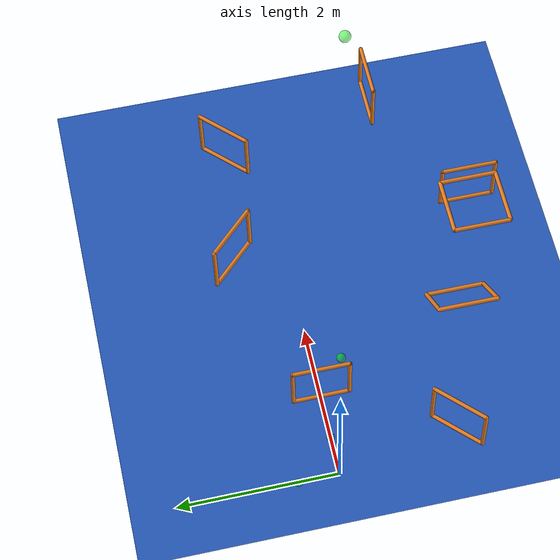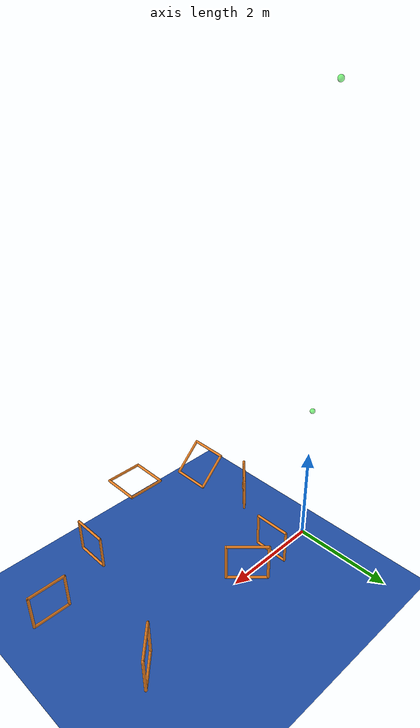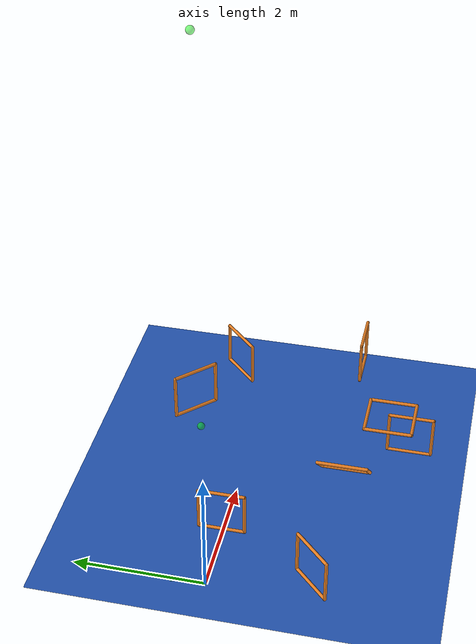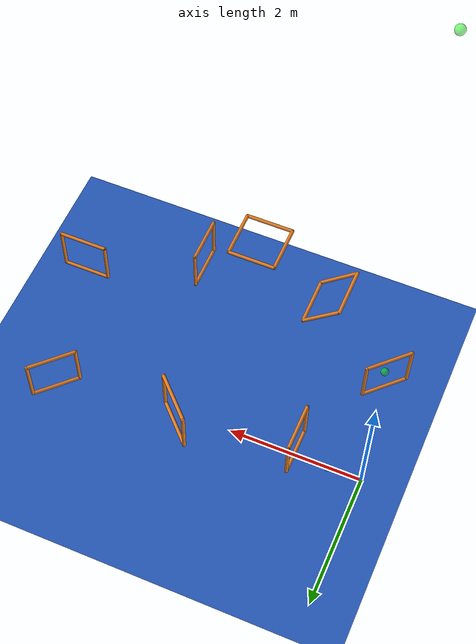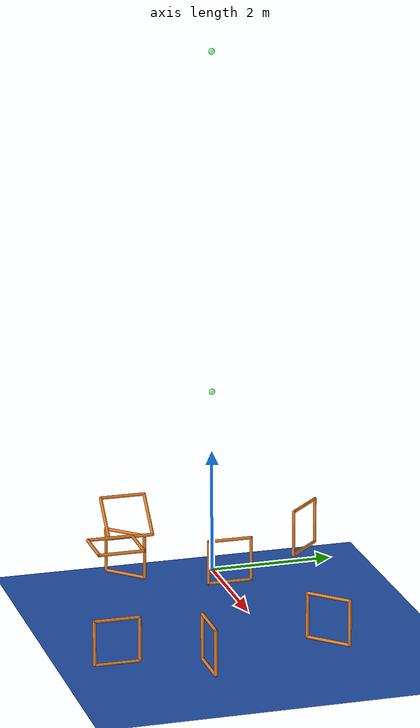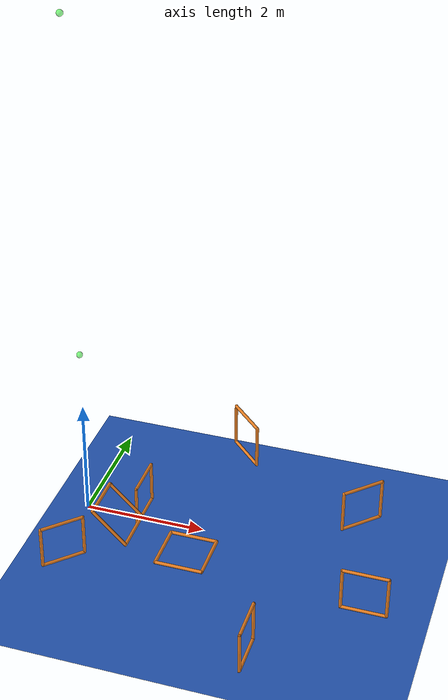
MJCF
<mujoco model="Quadrotor">
  <compiler inertiafromgeom="true" coordinate="local"/>
  <option timestep="0.01" gravity="0 0 -9.81" density="1" viscosity="1e-5" />

  <asset>
    <texture name="blue_grid" type="2d" builtin="checker" rgb1=".02 .14 .44" rgb2=".27 .55 1" width="300" height="300" mark="edge" markrgb="1 1 1"/>
    <material name="blue_grid" texture="blue_grid" texrepeat="1 1" texuniform="true" reflectance=".2"/>

    <texture name="grey_grid" type="2d" builtin="checker" rgb1=".26 .26 .26" rgb2=".6 .6 .6" width="300" height="300" mark="edge" markrgb="1 1 1"/>
    <material name="grey_grid" texture="blue_grid" texrepeat="1 1" texuniform="true" reflectance=".2"/>
    <texture name="skybox" type="skybox" builtin="gradient" rgb1=".66 .79 1" rgb2=".9 .91 .93" width="800" height="800"/>

    <material name="self" rgba=".7 .5 .3 1"/>
    <material name="self_default" rgba=".7 .5 .3 1"/>
    <material name="self_highlight" rgba="0 .5 .3 1"/>
    <material name="effector" rgba=".7 .4 .2 1"/>
    <material name="effector_default" rgba=".7 .4 .2 1"/>
    <material name="effector_highlight" rgba="0 .5 .3 1"/>
    <material name="decoration" rgba=".2 .6 .3 1"/>
    <material name="eye" rgba="0 .2 1 1"/>
    <material name="target" rgba=".6 .3 .3 1"/>
    <material name="target_default" rgba=".6 .3 .3 1"/>
    <material name="target_highlight" rgba=".6 .3 .3 .4"/>
    <material name="site" rgba=".5 .5 .5 .3"/>
  </asset>

  <worldbody>
      <geom name="floor" type="plane" conaffinity="1" size="100 100 .2" material="blue_grid"/>
    <body name="goal" mocap="true" pos="0.0 0.0 8.5" quat="0.0 0.70710678 0.0 0.70710678">
      <geom type="sphere" size="0.05" contype="0" conaffinity="0" rgba="0 1 0 .5"/>
    </body>
    <body name="goal2" mocap="true" pos="0.5 0.0 0.0" quat="0.0 0.70710678 0.0 0.70710678">
      <geom type="sphere" size="0.05" contype="0" conaffinity="0" rgba="0 1 0 .5"/>
    </body>
     <body name="goal3" mocap="true" pos="0.0 0.5 0.0" quat="0.0 0.70710678 0.0 0.70710678">
      <geom type="sphere" size="0.05" contype="0" conaffinity="0" rgba="0 1 0 .5"/>
    </body>
     <body name="goal4" mocap="true" pos="0.0 0.0 3.0" quat="0.0 0.70710678 0.0 0.70710678">
      <geom type="sphere" size="0.05" contype="0" conaffinity="0" rgba="0 1 0 .5"/>
    </body>

    <!-- gait 1 -->
    <body name="gait1_left" pos="1.0 0.35 0.5" quat="1 0 0 0">
      <geom type="capsule" size="0.025 0.1 0.05" rgba="0.902 0.494 0.133 1" fromto="0.0 0 -0.35 0.0 0 0.35"/>
    </body>
    <body name="gait1_right" pos="1.0 -0.35 0.5" quat="1 0 0 0">
      <geom type="capsule" size="0.025 0.1 0.05" rgba="0.902 0.494 0.133 1" fromto="0.0 0 -0.35 0.0 0 0.35"/>
    </body>
    <body name="gait1_top" pos="1.0 0.0 0.85" quat="1 0 0 0">
      <geom type="capsule" size="0.025 0.1 0.05" rgba="0.902 0.494 0.133 1" fromto="0.0 -0.35 0.0 0.0 0.35 0.0"/>
    </body>
    <body name="gait1_bottom" pos="1.0 0.0 0.15" quat="1 0 0 0">
      <geom type="capsule" size="0.025 0.1 0.05" rgba="0.902 0.494 0.133 1" fromto="0.0 -0.35 0.0 0.0 0.35 0.0"/>
    </body>

    <!-- gait 2 -->
    <body name="gait2_left" pos="2.25 1.0 1.5" quat="0.92388 0.0 0.0 0.382683">
      <geom type="capsule" size="0.025 0.1 0.05" rgba="0.902 0.494 0.133 1" fromto="0.0 0 -0.35 0.0 0 0.35"/>
    </body>
    <body name="gait2_right" pos="2.75 0.5 1.5" quat="0.92388 0.0 0.0 0.382683">
      <geom type="capsule" size="0.025 0.1 0.05" rgba="0.902 0.494 0.133 1" fromto="0.0 0 -0.35 0.0 0 0.35"/>
    </body>
    <body name="gait2_top" pos="2.5 0.75 1.85" quat="0.92388 0.0 0.0 0.382683">
      <geom type="capsule" size="0.025 0.1 0.05" rgba="0.902 0.494 0.133 1" fromto="0.0 -0.35 0.0 0.0 0.35 0.0"/>
    </body>
    <body name="gait2_bottom" pos="2.5 0.75 1.15" quat="0.92388 0.0 0.0 0.382683">
      <geom type="capsule" size="0.025 0.1 0.05" rgba="0.902 0.494 0.133 1" fromto="0.0 -0.35 0.0 0.0 0.35 0.0"/>
    </body>

    <!-- gait 3 -->
    <body name="gait3_left" pos="4.75 0.75 0.75" quat="0.92388 0.0 0.0 -0.382683">
      <geom type="capsule" size="0.025 0.1 0.05" rgba="0.902 0.494 0.133 1" fromto="0.0 0 -0.35 0.0 0 0.35"/>
    </body>
    <body name="gait3_right" pos="4.25 0.25 0.75" quat="0.92388 0.0 0.0 -0.382683">
      <geom type="capsule" size="0.025 0.1 0.05" rgba="0.902 0.494 0.133 1" fromto="0.0 0 -0.35 0.0 0 0.35"/>
    </body>
    <body name="gait3_top" pos="4.5 0.5 1.1" quat="0.92388 0.0 0.0 -0.382683">
      <geom type="capsule" size="0.025 0.1 0.05" rgba="0.902 0.494 0.133 1" fromto="0.0 -0.35 0.0 0.0 0.35 0.0"/>
    </body>
    <body name="gait3_bottom" pos="4.5 0.5 0.4" quat="0.92388 0.0 0.0 -0.382683">
      <geom type="capsule" size="0.025 0.1 0.05" rgba="0.902 0.494 0.133 1" fromto="0.0 -0.35 0.0 0.0 0.35 0.0"/>
    </body>

    <!-- gait 4 -->
    <body name="gait4_left" pos="5.35 -1.5 0.75" quat="0.7071 0 0 0.7071">
      <geom type="capsule" size="0.025 0.1 0.05" rgba="0.902 0.494 0.133 1" fromto="0.0 0 -0.35 0.0 0 0.35"/>
    </body>
    <body name="gait4_right" pos="4.65 -1.5 0.75" quat="0.7071 0 0 0.7071">
      <geom type="capsule" size="0.025 0.1 0.05" rgba="0.902 0.494 0.133 1" fromto="0.0 0 -0.35 0.0 0 0.35"/>
    </body>
    <body name="gait4_top" pos="5.0 -1.5 1.1" quat="0.7071 0 0 0.7071">
      <geom type="capsule" size="0.025 0.1 0.05" rgba="0.902 0.494 0.133 1" fromto="0.0 -0.35 0.0 0.0 0.35 0.0"/>
    </body>
    <body name="gait4_bottom" pos="5.0 -1.5 0.4" quat="0.7071 0 0 0.7071">
      <geom type="capsule" size="0.025 0.1 0.05" rgba="0.902 0.494 0.133 1" fromto="0.0 -0.35 0.0 0.0 0.35 0.0"/>
    </body>

    <!-- gait 5 -->
    <body name="gait5_left" pos="3.5 -2.85 0.35" quat="1 0 0 0">
      <geom type="capsule" size="0.025 0.1 0.05" rgba="0.902 0.494 0.133 1" fromto="0.0 0 -0.35 0.0 0 0.35"/>
    </body>
    <body name="gait5_right" pos="3.5 -2.15 0.35" quat="1 0 0 0">
      <geom type="capsule" size="0.025 0.1 0.05" rgba="0.902 0.494 0.133 1" fromto="0.0 0 -0.35 0.0 0 0.35"/>
    </body>
    <body name="gait5_top" pos="3.5 -2.5 0.7" quat="1 0 0 0">
      <geom type="capsule" size="0.025 0.1 0.05" rgba="0.902 0.494 0.133 1" fromto="0.0 -0.35 0.0 0.0 0.35 0.0"/>
    </body>
    <body name="gait5_bottom" pos="3.5 -2.5 0.0" quat="1 0 0 0">
      <geom type="capsule" size="0.025 0.1 0.05" rgba="0.902 0.494 0.133 1" fromto="0.0 -0.35 0.0 0.0 0.35 0.0"/>
    </body>

    <!-- gait 6 -->
    <body name="gait6_left" pos="2.5 -1.9 1.5" quat="1 0 0 0">
      <geom type="capsule" size="0.025 0.1 0.05" rgba="0.902 0.494 0.133 1" fromto="-0.35 0.0 0.0 0.35 0.0 0.0"/>
    </body>
    <body name="gait6_right" pos="2.5 -2.6 1.5" quat="1 0 0 0">
      <geom type="capsule" size="0.025 0.1 0.05" rgba="0.902 0.494 0.133 1" fromto="-0.35 0.0 0.0 0.35 0.0 0.0"/>
    </body>
    <body name="gait6_top" pos="2.85 -2.25 1.5" quat="1 0 0 0">
      <geom type="capsule" size="0.025 0.1 0.05" rgba="0.902 0.494 0.133 1" fromto="0.0 -0.35 0.0 0.0 0.35 0.0"/>
    </body>
    <body name="gait6_bottom" pos="2.15 -2.25 1.5" quat="1 0 0 0">
      <geom type="capsule" size="0.025 0.1 0.05" rgba="0.902 0.494 0.133 1" fromto="0.0 -0.35 0.0 0.0 0.35 0.0"/>
    </body>

    <!-- gait 7 -->
    <body name="gait7_left" pos="1.25 -2.1 1.5" quat="0.9238 0.0 -0.382683 0.0">
      <geom type="capsule" size="0.025 0.1 0.05" rgba="0.902 0.494 0.133 1" fromto="0.0 0 -0.35 0.0 0 0.35"/>
    </body>
    <body name="gait7_right" pos="1.25 -1.4 1.5" quat="0.9238 0.0 -0.382683 0.0">
      <geom type="capsule" size="0.025 0.1 0.05" rgba="0.902 0.494 0.133 1" fromto="0.0 0 -0.35 0.0 0 0.35"/>
    </body>
    <body name="gait7_top" pos="1.0 -1.75 1.75" quat="0.9238 0.0 -0.382683 0.0">
      <geom type="capsule" size="0.025 0.1 0.05" rgba="0.902 0.494 0.133 1" fromto="0.0 -0.35 0.0 0.0 0.35 0.0"/>
    </body>
    <body name="gait7_bottom" pos="1.5 -1.75 1.25" quat="0.9238 0.0 -0.382683 0.0">
      <geom type="capsule" size="0.025 0.1 0.05" rgba="0.902 0.494 0.133 1" fromto="0.0 -0.35 0.0 0.0 0.35 0.0"/>
    </body>

    <!-- gait 8 -->
    <body name="gait8_left" pos="0.45 -1.25 0.5" quat="0.92388 0.0 0.0 -0.382683">
      <geom type="capsule" size="0.025 0.1 0.05" rgba="0.902 0.494 0.133 1" fromto="0.0 0 -0.35 0.0 0 0.35"/>
    </body>
    <body name="gait8_right" pos="-0.05 -1.75 0.5" quat="0.92388 0.0 0.0 -0.382683">
      <geom type="capsule" size="0.025 0.1 0.05" rgba="0.902 0.494 0.133 1" fromto="0.0 0 -0.35 0.0 0 0.35"/>
    </body>
    <body name="gait8_top" pos="0.2 -1.5 0.85" quat="0.92388 0.0 0.0 -0.382683">
      <geom type="capsule" size="0.025 0.1 0.05" rgba="0.902 0.494 0.133 1" fromto="0.0 -0.35 0.0 0.0 0.35 0.0"/>
    </body>
    <body name="gait8_bottom" pos="0.2 -1.5 0.15" quat="0.92388 0.0 0.0 -0.382683">
      <geom type="capsule" size="0.025 0.1 0.05" rgba="0.902 0.494 0.133 1" fromto="0.0 -0.35 0.0 0.0 0.35 0.0"/>
    </body>

  </worldbody>

</mujoco>
